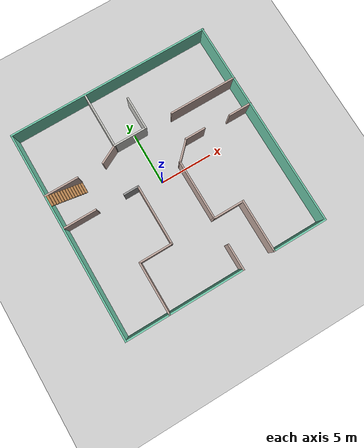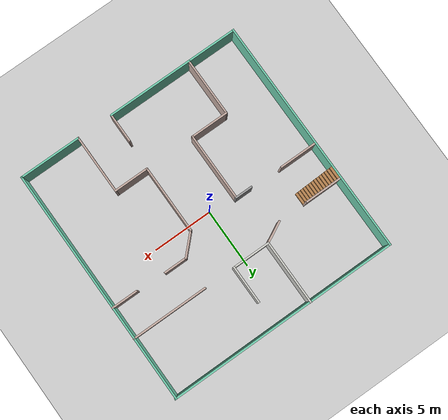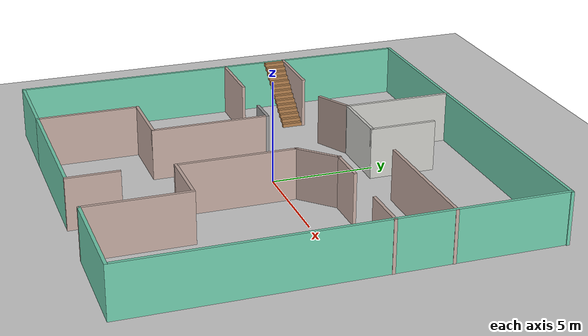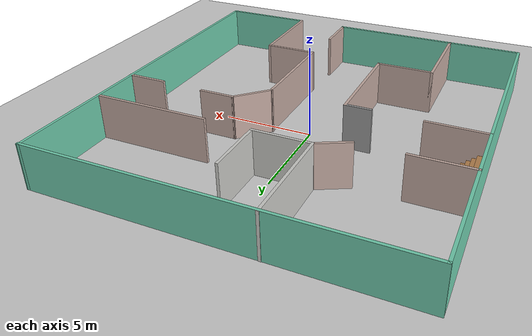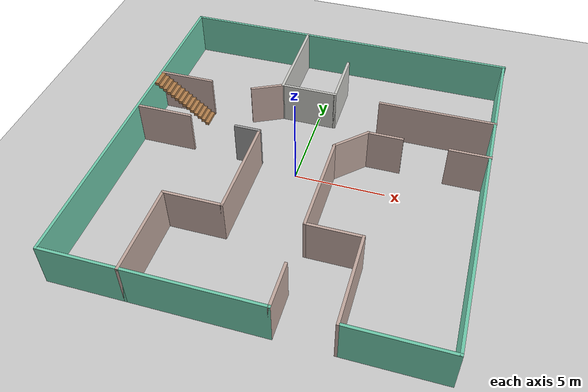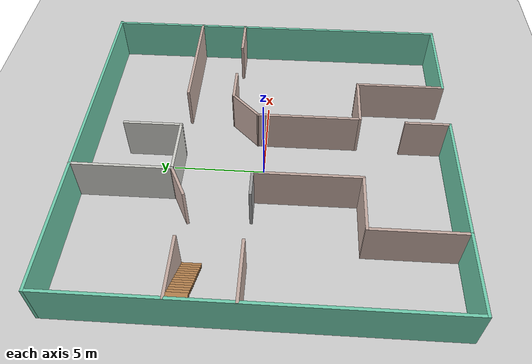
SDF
<sdf version="1.6">
 <world name="default">
  <model name="ground_plane">
   <static>1</static>
   <link name="link">
    <collision name="collision">
     <geometry><plane><normal>0 0 1</normal><size>100 100</size></plane></geometry>
     <surface><friction><ode><mu>100</mu><mu2>50</mu2></ode></friction></surface>
    </collision>
    <visual name="visual">
     <cast_shadows>0</cast_shadows>
     <geometry><plane><normal>0 0 1</normal><size>100 100</size></plane></geometry>
     <material>
      <script><uri>file://media/materials/scripts/gazebo.material</uri><name>Gazebo/Grey</name></script>
     </material>
    </visual>
   </link>
  </model>
  <model name="building_3">
   <pose>0.351379 -0.074097 0 0 -0 0</pose>
   <link name="Stairs_3">
    <visual name="Stairs_3_Visual_0">
     <pose>-6.62023 3.23296 0.089286 0 0 -1.5708</pose>
     <geometry><box><size>1 0.220714 0.178571</size></box></geometry>
     <material>
      <script><uri>file://media/materials/scripts/gazebo.material</uri><name>Gazebo/Wood</name></script>
      <ambient>1 1 1 1</ambient>
     </material>
     <meta><layer>0</layer></meta>
    </visual>
    <collision name="Stairs_3_Collision_0">
     <geometry><box><size>1 0.220714 0.178571</size></box></geometry>
     <pose>-6.62023 3.23296 0.089286 0 0 -1.5708</pose>
    </collision>
    <visual name="Stairs_3_Visual_1">
     <pose>-6.84095 3.23296 0.267857 0 0 -1.5708</pose>
     <geometry><box><size>1 0.220714 0.178571</size></box></geometry>
     <material>
      <script><uri>file://media/materials/scripts/gazebo.material</uri><name>Gazebo/Wood</name></script>
      <ambient>1 1 1 1</ambient>
     </material>
     <meta><layer>0</layer></meta>
    </visual>
    <collision name="Stairs_3_Collision_1">
     <geometry><box><size>1 0.220714 0.178571</size></box></geometry>
     <pose>-6.84095 3.23296 0.267857 0 0 -1.5708</pose>
    </collision>
    <visual name="Stairs_3_Visual_2">
     <pose>-7.06166 3.23296 0.446429 0 0 -1.5708</pose>
     <geometry><box><size>1 0.220714 0.178571</size></box></geometry>
     <material>
      <script><uri>file://media/materials/scripts/gazebo.material</uri><name>Gazebo/Wood</name></script>
      <ambient>1 1 1 1</ambient>
     </material>
     <meta><layer>0</layer></meta>
    </visual>
    <collision name="Stairs_3_Collision_2">
     <geometry><box><size>1 0.220714 0.178571</size></box></geometry>
     <pose>-7.06166 3.23296 0.446429 0 0 -1.5708</pose>
    </collision>
    <visual name="Stairs_3_Visual_3">
     <pose>-7.28238 3.23296 0.625 0 0 -1.5708</pose>
     <geometry><box><size>1 0.220714 0.178571</size></box></geometry>
     <material>
      <script><uri>file://media/materials/scripts/gazebo.material</uri><name>Gazebo/Wood</name></script>
      <ambient>1 1 1 1</ambient>
     </material>
     <meta><layer>0</layer></meta>
    </visual>
    <collision name="Stairs_3_Collision_3">
     <geometry><box><size>1 0.220714 0.178571</size></box></geometry>
     <pose>-7.28238 3.23296 0.625 0 0 -1.5708</pose>
    </collision>
    <visual name="Stairs_3_Visual_4">
     <pose>-7.50309 3.23296 0.803571 0 0 -1.5708</pose>
     <geometry><box><size>1 0.220714 0.178571</size></box></geometry>
     <material>
      <script><uri>file://media/materials/scripts/gazebo.material</uri><name>Gazebo/Wood</name></script>
      <ambient>1 1 1 1</ambient>
     </material>
     <meta><layer>0</layer></meta>
    </visual>
    <collision name="Stairs_3_Collision_4">
     <geometry><box><size>1 0.220714 0.178571</size></box></geometry>
     <pose>-7.50309 3.23296 0.803571 0 0 -1.5708</pose>
    </collision>
    <visual name="Stairs_3_Visual_5">
     <pose>-7.7238 3.23296 0.982143 0 0 -1.5708</pose>
     <geometry><box><size>1 0.220714 0.178571</size></box></geometry>
     <material>
      <script><uri>file://media/materials/scripts/gazebo.material</uri><name>Gazebo/Wood</name></script>
      <ambient>1 1 1 1</ambient>
     </material>
     <meta><layer>0</layer></meta>
    </visual>
    <collision name="Stairs_3_Collision_5">
     <geometry><box><size>1 0.220714 0.178571</size></box></geometry>
     <pose>-7.7238 3.23296 0.982143 0 0 -1.5708</pose>
    </collision>
    <visual name="Stairs_3_Visual_6">
     <pose>-7.94452 3.23296 1.16071 0 0 -1.5708</pose>
     <geometry><box><size>1 0.220714 0.178571</size></box></geometry>
     <material>
      <script><uri>file://media/materials/scripts/gazebo.material</uri><name>Gazebo/Wood</name></script>
      <ambient>1 1 1 1</ambient>
     </material>
     <meta><layer>0</layer></meta>
    </visual>
    <collision name="Stairs_3_Collision_6">
     <geometry><box><size>1 0.220714 0.178571</size></box></geometry>
     <pose>-7.94452 3.23296 1.16071 0 0 -1.5708</pose>
    </collision>
    <visual name="Stairs_3_Visual_7">
     <pose>-8.16523 3.23296 1.33929 0 0 -1.5708</pose>
     <geometry><box><size>1 0.220714 0.178571</size></box></geometry>
     <material>
      <script><uri>file://media/materials/scripts/gazebo.material</uri><name>Gazebo/Wood</name></script>
      <ambient>1 1 1 1</ambient>
     </material>
     <meta><layer>0</layer></meta>
    </visual>
    <collision name="Stairs_3_Collision_7">
     <geometry><box><size>1 0.220714 0.178571</size></box></geometry>
     <pose>-8.16523 3.23296 1.33929 0 0 -1.5708</pose>
    </collision>
    <visual name="Stairs_3_Visual_8">
     <pose>-8.38595 3.23296 1.51786 0 0 -1.5708</pose>
     <geometry><box><size>1 0.220714 0.178571</size></box></geometry>
     <material>
      <script><uri>file://media/materials/scripts/gazebo.material</uri><name>Gazebo/Wood</name></script>
      <ambient>1 1 1 1</ambient>
     </material>
     <meta><layer>0</layer></meta>
    </visual>
    <collision name="Stairs_3_Collision_8">
     <geometry><box><size>1 0.220714 0.178571</size></box></geometry>
     <pose>-8.38595 3.23296 1.51786 0 0 -1.5708</pose>
    </collision>
    <visual name="Stairs_3_Visual_9">
     <pose>-8.60666 3.23296 1.69643 0 0 -1.5708</pose>
     <geometry><box><size>1 0.220714 0.178571</size></box></geometry>
     <material>
      <script><uri>file://media/materials/scripts/gazebo.material</uri><name>Gazebo/Wood</name></script>
      <ambient>1 1 1 1</ambient>
     </material>
     <meta><layer>0</layer></meta>
    </visual>
    <collision name="Stairs_3_Collision_9">
     <geometry><box><size>1 0.220714 0.178571</size></box></geometry>
     <pose>-8.60666 3.23296 1.69643 0 0 -1.5708</pose>
    </collision>
    <visual name="Stairs_3_Visual_10">
     <pose>-8.82738 3.23296 1.875 0 0 -1.5708</pose>
     <geometry><box><size>1 0.220714 0.178571</size></box></geometry>
     <material>
      <script><uri>file://media/materials/scripts/gazebo.material</uri><name>Gazebo/Wood</name></script>
      <ambient>1 1 1 1</ambient>
     </material>
     <meta><layer>0</layer></meta>
    </visual>
    <collision name="Stairs_3_Collision_10">
     <geometry><box><size>1 0.220714 0.178571</size></box></geometry>
     <pose>-8.82738 3.23296 1.875 0 0 -1.5708</pose>
    </collision>
    <visual name="Stairs_3_Visual_11">
     <pose>-9.04809 3.23296 2.05357 0 0 -1.5708</pose>
     <geometry><box><size>1 0.220714 0.178571</size></box></geometry>
     <material>
      <script><uri>file://media/materials/scripts/gazebo.material</uri><name>Gazebo/Wood</name></script>
      <ambient>1 1 1 1</ambient>
     </material>
     <meta><layer>0</layer></meta>
    </visual>
    <collision name="Stairs_3_Collision_11">
     <geometry><box><size>1 0.220714 0.178571</size></box></geometry>
     <pose>-9.04809 3.23296 2.05357 0 0 -1.5708</pose>
    </collision>
    <visual name="Stairs_3_Visual_12">
     <pose>-9.2688 3.23296 2.23214 0 0 -1.5708</pose>
     <geometry><box><size>1 0.220714 0.178571</size></box></geometry>
     <material>
      <script><uri>file://media/materials/scripts/gazebo.material</uri><name>Gazebo/Wood</name></script>
      <ambient>1 1 1 1</ambient>
     </material>
     <meta><layer>0</layer></meta>
    </visual>
    <collision name="Stairs_3_Collision_12">
     <geometry><box><size>1 0.220714 0.178571</size></box></geometry>
     <pose>-9.2688 3.23296 2.23214 0 0 -1.5708</pose>
    </collision>
    <visual name="Stairs_3_Visual_13">
     <pose>-9.48952 3.23296 2.41071 0 0 -1.5708</pose>
     <geometry><box><size>1 0.220714 0.178571</size></box></geometry>
     <material>
      <script><uri>file://media/materials/scripts/gazebo.material</uri><name>Gazebo/Wood</name></script>
      <ambient>1 1 1 1</ambient>
     </material>
     <meta><layer>0</layer></meta>
    </visual>
    <collision name="Stairs_3_Collision_13">
     <geometry><box><size>1 0.220714 0.178571</size></box></geometry>
     <pose>-9.48952 3.23296 2.41071 0 0 -1.5708</pose>
    </collision>
   </link>
   <link name="Wall_37">
    <collision name="Wall_37_Collision">
     <geometry><box><size>20 0.15 2.5</size></box></geometry>
     <pose>0 0 1.25 0 -0 0</pose>
    </collision>
    <visual name="Wall_37_Visual">
     <pose>0 0 1.25 0 -0 0</pose>
     <geometry><box><size>20 0.15 2.5</size></box></geometry>
     <material>
      <script><uri>file://media/materials/scripts/gazebo.material</uri><name>Gazebo/Grey</name></script>
      <ambient>0.435294 0.796078 0.67451 1</ambient>
     </material>
     <meta><layer>0</layer></meta>
    </visual>
    <pose>-9.675 -0.008366 0 0 0 -1.5708</pose>
   </link>
   <link name="Wall_38">
    <collision name="Wall_38_Collision">
     <geometry><box><size>4.25 0.15 2.5</size></box></geometry>
     <pose>0 0 1.25 0 -0 0</pose>
    </collision>
    <visual name="Wall_38_Visual">
     <pose>0 0 1.25 0 -0 0</pose>
     <geometry><box><size>4.25 0.15 2.5</size></box></geometry>
     <material>
      <script><uri>file://media/materials/scripts/gazebo.material</uri><name>Gazebo/Grey</name></script>
      <ambient>0.435294 0.796078 0.67451 1</ambient>
     </material>
     <meta><layer>0</layer></meta>
    </visual>
    <pose>-7.625 -9.93337 0 0 -0 0</pose>
   </link>
   <link name="Wall_39">
    <collision name="Wall_39_Collision">
     <geometry><box><size>5 0.15 2.5</size></box></geometry>
     <pose>0 0 1.25 0 -0 0</pose>
    </collision>
    <visual name="Wall_39_Visual">
     <pose>0 0 1.25 0 -0 0</pose>
     <geometry><box><size>5 0.15 2.5</size></box></geometry>
     <material>
      <script><uri>file://media/materials/scripts/gazebo.material</uri><name>Gazebo/Grey</name></script>
      <ambient>0.760784 0.662745 0.627451 1</ambient>
     </material>
     <meta><layer>0</layer></meta>
    </visual>
    <pose>-5.575 -7.50837 0 0 -0 1.5708</pose>
   </link>
   <link name="Wall_41">
    <collision name="Wall_41_Collision">
     <geometry><box><size>5 0.15 2.5</size></box></geometry>
     <pose>0 0 1.25 0 -0 0</pose>
    </collision>
    <visual name="Wall_41_Visual">
     <pose>0 0 1.25 0 -0 0</pose>
     <geometry><box><size>5 0.15 2.5</size></box></geometry>
     <material>
      <script><uri>file://media/materials/scripts/gazebo.material</uri><name>Gazebo/Grey</name></script>
      <ambient>0.760784 0.662745 0.627451 1</ambient>
     </material>
     <meta><layer>0</layer></meta>
    </visual>
    <pose>4.525 -7.50837 0 0 0 -1.5708</pose>
   </link>
   <link name="Wall_42">
    <collision name="Wall_42_Collision">
     <geometry><box><size>5.25 0.15 2.5</size></box></geometry>
     <pose>0 0 1.25 0 -0 0</pose>
    </collision>
    <visual name="Wall_42_Visual">
     <pose>0 0 1.25 0 -0 0</pose>
     <geometry><box><size>5.25 0.15 2.5</size></box></geometry>
     <material>
      <script><uri>file://media/materials/scripts/gazebo.material</uri><name>Gazebo/Grey</name></script>
      <ambient>0.435294 0.796078 0.67451 1</ambient>
     </material>
     <meta><layer>0</layer></meta>
    </visual>
    <pose>7.075 -9.93337 0 0 -0 0</pose>
   </link>
   <link name="Wall_43">
    <collision name="Wall_43_Collision">
     <geometry><box><size>20 0.15 2.5</size></box></geometry>
     <pose>0 0 1.25 0 -0 0</pose>
    </collision>
    <visual name="Wall_43_Visual">
     <pose>0 0 1.25 0 -0 0</pose>
     <geometry><box><size>20 0.15 2.5</size></box></geometry>
     <material>
      <script><uri>file://media/materials/scripts/gazebo.material</uri><name>Gazebo/Grey</name></script>
      <ambient>0.435294 0.796078 0.67451 1</ambient>
     </material>
     <meta><layer>0</layer></meta>
    </visual>
    <pose>9.625 -0.008366 0 0 -0 1.5708</pose>
   </link>
   <link name="Wall_45">
    <collision name="Wall_45_Collision">
     <geometry><box><size>3.25 0.15 2.5</size></box></geometry>
     <pose>0 0 1.25 0 -0 0</pose>
    </collision>
    <visual name="Wall_45_Visual">
     <pose>0 0 1.25 0 -0 0</pose>
     <geometry><box><size>3.25 0.15 2.5</size></box></geometry>
     <material>
      <script><uri>file://media/materials/scripts/gazebo.material</uri><name>Gazebo/Grey</name></script>
      <ambient>0.760784 0.662745 0.627451 1</ambient>
     </material>
     <meta><layer>0</layer></meta>
    </visual>
    <pose>-4.025 -5.08337 0 0 -0 0</pose>
   </link>
   <link name="Wall_47">
    <collision name="Wall_47_Collision">
     <geometry><box><size>3 0.15 2.5</size></box></geometry>
     <pose>0 0 1.25 0 -0 0</pose>
    </collision>
    <visual name="Wall_47_Visual">
     <pose>0 0 1.25 0 -0 0</pose>
     <geometry><box><size>3 0.15 2.5</size></box></geometry>
     <material>
      <script><uri>file://media/materials/scripts/gazebo.material</uri><name>Gazebo/Grey</name></script>
      <ambient>0.760784 0.662745 0.627451 1</ambient>
     </material>
     <meta><layer>0</layer></meta>
    </visual>
    <pose>3.1 -5.08337 0 0 -0 3.14159</pose>
   </link>
   <link name="Wall_49">
    <collision name="Wall_49_Collision">
     <geometry><box><size>5.75 0.15 2.5</size></box></geometry>
     <pose>0 0 1.25 0 -0 0</pose>
    </collision>
    <visual name="Wall_49_Visual">
     <pose>0 0 1.25 0 -0 0</pose>
     <geometry><box><size>5.75 0.15 2.5</size></box></geometry>
     <material>
      <script><uri>file://media/materials/scripts/gazebo.material</uri><name>Gazebo/Grey</name></script>
      <ambient>0.760784 0.662745 0.627451 1</ambient>
     </material>
     <meta><layer>0</layer></meta>
    </visual>
    <pose>-2.475 -2.28337 0 0 -0 1.5708</pose>
   </link>
   <link name="Wall_5">
    <collision name="Wall_5_Collision">
     <geometry><box><size>19.5 0.15 2.5</size></box></geometry>
     <pose>0 0 1.25 0 -0 0</pose>
    </collision>
    <visual name="Wall_5_Visual">
     <pose>0 0 1.25 0 -0 0</pose>
     <geometry><box><size>19.5 0.15 2.5</size></box></geometry>
     <material>
      <script><uri>file://media/materials/scripts/gazebo.material</uri><name>Gazebo/Grey</name></script>
      <ambient>0.435294 0.796078 0.67451 1</ambient>
     </material>
     <meta><layer>0</layer></meta>
    </visual>
    <pose>1e-06 9.91663 0 0 -0 3.14159</pose>
   </link>
   <link name="Wall_53">
    <collision name="Wall_53_Collision">
     <geometry><box><size>3.25 0.15 2.5</size></box></geometry>
     <pose>0 0 1.25 0 -0 0</pose>
    </collision>
    <visual name="Wall_53_Visual">
     <pose>0 0 1.25 0 -0 0</pose>
     <geometry><box><size>3.25 0.15 2.5</size></box></geometry>
     <material>
      <script><uri>file://media/materials/scripts/gazebo.material</uri><name>Gazebo/Grey</name></script>
      <ambient>0.760784 0.662745 0.627451 1</ambient>
     </material>
     <meta><layer>0</layer></meta>
    </visual>
    <pose>-8.10938 0.605734 0 0 -0 0</pose>
   </link>
   <link name="Wall_55">
    <collision name="Wall_55_Collision">
     <geometry><box><size>1.5 0.15 2.5</size></box></geometry>
     <pose>0 0 1.25 0 -0 0</pose>
    </collision>
    <visual name="Wall_55_Visual">
     <pose>0 0 1.25 0 -0 0</pose>
     <geometry><box><size>1.5 0.15 2.5</size></box></geometry>
     <material>
      <script><uri>file://media/materials/scripts/gazebo.material</uri><name>Gazebo/Grey</name></script>
      <ambient>1 1 1 1</ambient>
     </material>
     <meta><layer>0</layer></meta>
    </visual>
    <pose>-3.15 0.516634 0 0 -0 3.14159</pose>
   </link>
   <link name="Wall_57">
    <collision name="Wall_57_Collision">
     <geometry><box><size>3.25 0.15 2.5</size></box></geometry>
     <pose>0 0 1.25 0 -0 0</pose>
    </collision>
    <visual name="Wall_57_Visual">
     <pose>0 0 1.25 0 -0 0</pose>
     <geometry><box><size>3.25 0.15 2.5</size></box></geometry>
     <material>
      <script><uri>file://media/materials/scripts/gazebo.material</uri><name>Gazebo/Grey</name></script>
      <ambient>0.760784 0.662745 0.627451 1</ambient>
     </material>
     <meta><layer>0</layer></meta>
    </visual>
    <pose>-8.10938 3.80755 0 0 -0 0</pose>
   </link>
   <link name="Wall_59">
    <collision name="Wall_59_Collision">
     <geometry><box><size>1.94728 0.15 2.5</size></box></geometry>
     <pose>0 0 1.25 0 -0 0</pose>
    </collision>
    <visual name="Wall_59_Visual">
     <pose>0 0 1.25 0 -0 0</pose>
     <geometry><box><size>1.94728 0.15 2.5</size></box></geometry>
     <material>
      <script><uri>file://media/materials/scripts/gazebo.material</uri><name>Gazebo/Grey</name></script>
      <ambient>0.760784 0.662745 0.627451 1</ambient>
     </material>
     <meta><layer>0</layer></meta>
    </visual>
    <pose>-3.23333 4.21689 0 0 -0 0.472942</pose>
   </link>
   <link name="Wall_62">
    <collision name="Wall_62_Collision">
     <geometry><box><size>5.45708 0.15 2.5</size></box></geometry>
     <pose>0 0 1.25 0 -0 0</pose>
    </collision>
    <visual name="Wall_62_Visual">
     <pose>0 0 1.25 0 -0 0</pose>
     <geometry><box><size>5.45708 0.15 2.5</size></box></geometry>
     <material>
      <script><uri>file://media/materials/scripts/gazebo.material</uri><name>Gazebo/CeilingTiled</name></script>
      <ambient>0.760784 0.662745 0.627451 1</ambient>
     </material>
     <meta><layer>0</layer></meta>
    </visual>
    <pose>-2.43126 7.27977 0 0 0 -1.57158</pose>
   </link>
   <link name="Wall_64">
    <collision name="Wall_64_Collision">
     <geometry><box><size>5.75 0.15 2.5</size></box></geometry>
     <pose>0 0 1.25 0 -0 0</pose>
    </collision>
    <visual name="Wall_64_Visual">
     <pose>0 0 1.25 0 -0 0</pose>
     <geometry><box><size>5.75 0.15 2.5</size></box></geometry>
     <material>
      <script><uri>file://media/materials/scripts/gazebo.material</uri><name>Gazebo/Grey</name></script>
      <ambient>0.760784 0.662745 0.627451 1</ambient>
     </material>
     <meta><layer>0</layer></meta>
    </visual>
    <pose>1.675 -2.28337 0 0 -0 1.5708</pose>
   </link>
   <link name="Wall_65">
    <collision name="Wall_65_Collision">
     <geometry><box><size>2.25 0.15 2.5</size></box></geometry>
     <pose>0 0 1.25 0 -0 0</pose>
    </collision>
    <visual name="Wall_65_Visual">
     <pose>0 0 1.25 0 -0 0</pose>
     <geometry><box><size>2.25 0.15 2.5</size></box></geometry>
     <material>
      <script><uri>file://media/materials/scripts/gazebo.material</uri><name>Gazebo/Grey</name></script>
      <ambient>0.760784 0.662745 0.627451 1</ambient>
     </material>
     <meta><layer>0</layer></meta>
    </visual>
    <pose>2.41746 1.2591 0 0 -0 0.785398</pose>
   </link>
   <link name="Wall_66">
    <collision name="Wall_66_Collision">
     <geometry><box><size>2 0.15 2.5</size></box></geometry>
     <pose>0 0 1.25 0 -0 0</pose>
    </collision>
    <visual name="Wall_66_Visual">
     <pose>0 0 1.25 0 -0 0</pose>
     <geometry><box><size>2 0.15 2.5</size></box></geometry>
     <material>
      <script><uri>file://media/materials/scripts/gazebo.material</uri><name>Gazebo/Grey</name></script>
      <ambient>0.760784 0.662745 0.627451 1</ambient>
     </material>
     <meta><layer>0</layer></meta>
    </visual>
    <pose>4.08493 2.00156 0 0 -0 0</pose>
   </link>
   <link name="Wall_68">
    <collision name="Wall_68_Collision">
     <geometry><box><size>2.25 0.15 2.5</size></box></geometry>
     <pose>0 0 1.25 0 -0 0</pose>
    </collision>
    <visual name="Wall_68_Visual">
     <pose>0 0 1.25 0 -0 0</pose>
     <geometry><box><size>2.25 0.15 2.5</size></box></geometry>
     <material>
      <script><uri>file://media/materials/scripts/gazebo.material</uri><name>Gazebo/Grey</name></script>
      <ambient>0.760784 0.662745 0.627451 1</ambient>
     </material>
     <meta><layer>0</layer></meta>
    </visual>
    <pose>8.59202 1.88583 0 0 -0 3.14159</pose>
   </link>
   <link name="Wall_70">
    <collision name="Wall_70_Collision">
     <geometry><box><size>6.5 0.15 2.5</size></box></geometry>
     <pose>0 0 1.25 0 -0 0</pose>
    </collision>
    <visual name="Wall_70_Visual">
     <pose>0 0 1.25 0 -0 0</pose>
     <geometry><box><size>6.5 0.15 2.5</size></box></geometry>
     <material>
      <script><uri>file://media/materials/scripts/gazebo.material</uri><name>Gazebo/Grey</name></script>
      <ambient>0.760784 0.662745 0.627451 1</ambient>
     </material>
     <meta><layer>0</layer></meta>
    </visual>
    <pose>6.46702 4.61991 0 0 -0 3.14159</pose>
   </link>
   <link name="Wall_72">
    <collision name="Wall_72_Collision">
     <geometry><box><size>3.25 0.15 2.5</size></box></geometry>
     <pose>0 0 1.25 0 -0 0</pose>
    </collision>
    <visual name="Wall_72_Visual">
     <pose>0 0 1.25 0 -0 0</pose>
     <geometry><box><size>3.25 0.15 2.5</size></box></geometry>
     <material>
      <script><uri>file://media/materials/scripts/gazebo.material</uri><name>Gazebo/CeilingTiled</name></script>
      <ambient>1 1 1 1</ambient>
     </material>
     <meta><layer>0</layer></meta>
    </visual>
    <pose>-0.883328 4.62623 0 0 -0 0</pose>
   </link>
   <link name="Wall_74">
    <collision name="Wall_74_Collision">
     <geometry><box><size>3.25 0.15 2.5</size></box></geometry>
     <pose>0 0 1.25 0 -0 0</pose>
    </collision>
    <visual name="Wall_74_Visual">
     <pose>0 0 1.25 0 -0 0</pose>
     <geometry><box><size>3.25 0.15 2.5</size></box></geometry>
     <material>
      <script><uri>file://media/materials/scripts/gazebo.material</uri><name>Gazebo/CeilingTiled</name></script>
      <ambient>0.760784 0.662745 0.627451 1</ambient>
     </material>
     <meta><layer>0</layer></meta>
    </visual>
    <pose>0.666672 6.17623 0 0 -0 1.5708</pose>
   </link>
   <link name="Wall_76">
    <collision name="Wall_76_Collision">
     <geometry><box><size>7.25 0.15 2.5</size></box></geometry>
     <pose>0 0 1.25 0 -0 0</pose>
    </collision>
    <visual name="Wall_76_Visual">
     <pose>0 0 1.25 0 -0 0</pose>
     <geometry><box><size>7.25 0.15 2.5</size></box></geometry>
     <material>
      <script><uri>file://media/materials/scripts/gazebo.material</uri><name>Gazebo/Grey</name></script>
      <ambient>0.435294 0.796078 0.67451 1</ambient>
     </material>
     <meta><layer>0</layer></meta>
    </visual>
    <pose>-2.025 -9.93337 0 0 -0 0</pose>
   </link>
   <link name="Wall_77">
    <collision name="Wall_77_Collision">
     <geometry><box><size>2.5 0.15 2.5</size></box></geometry>
     <pose>0 0 1.25 0 -0 0</pose>
    </collision>
    <visual name="Wall_77_Visual">
     <pose>0 0 1.25 0 -0 0</pose>
     <geometry><box><size>2.5 0.15 2.5</size></box></geometry>
     <material>
      <script><uri>file://media/materials/scripts/gazebo.material</uri><name>Gazebo/Grey</name></script>
      <ambient>0.760784 0.662745 0.627451 1</ambient>
     </material>
     <meta><layer>0</layer></meta>
    </visual>
    <pose>1.525 -8.75837 0 0 -0 1.5708</pose>
   </link>
   <static>1</static>
  </model>
 </world>
</sdf>
